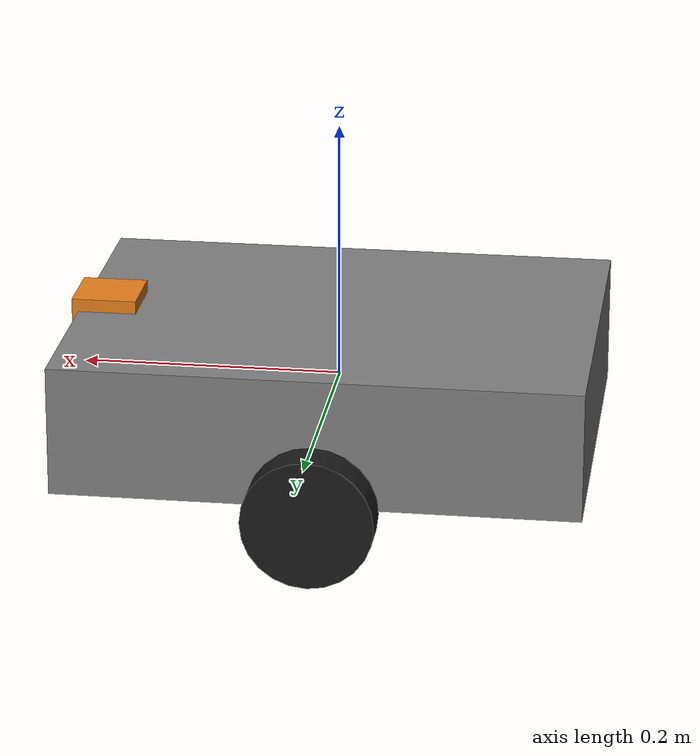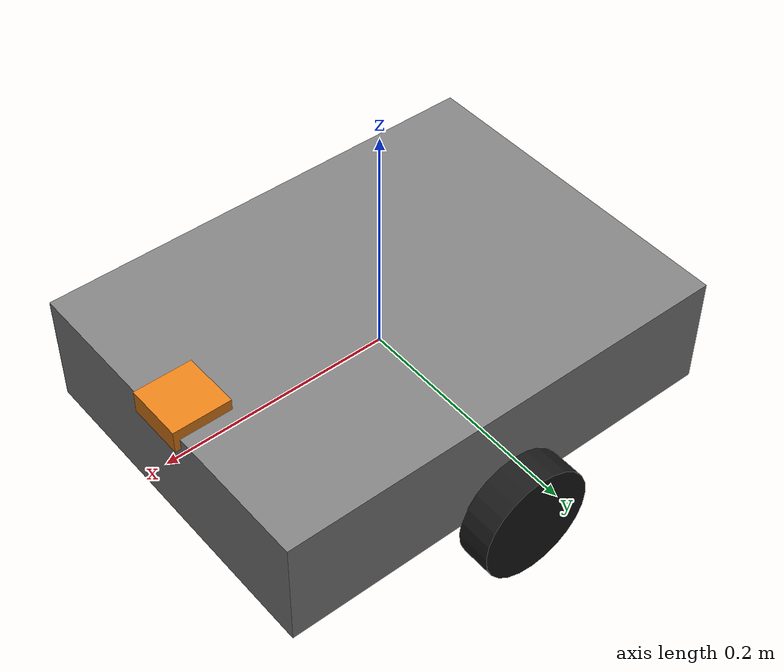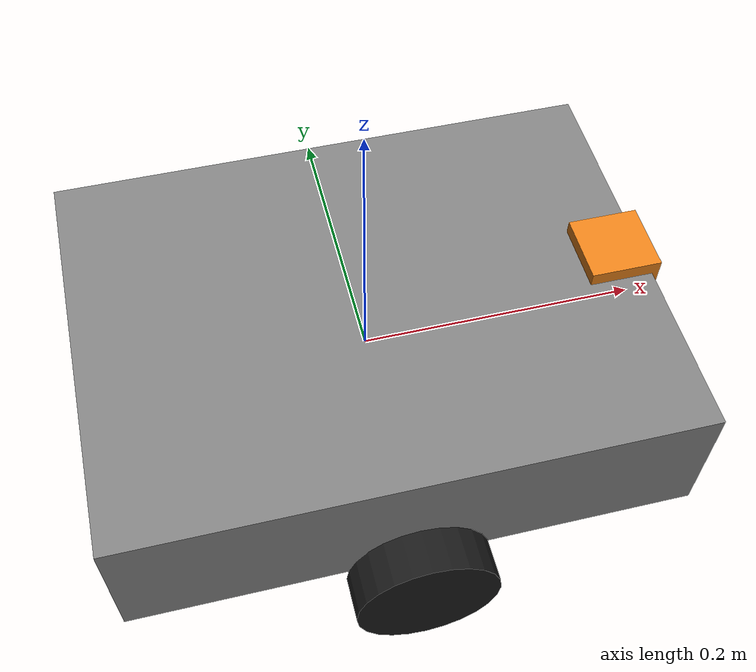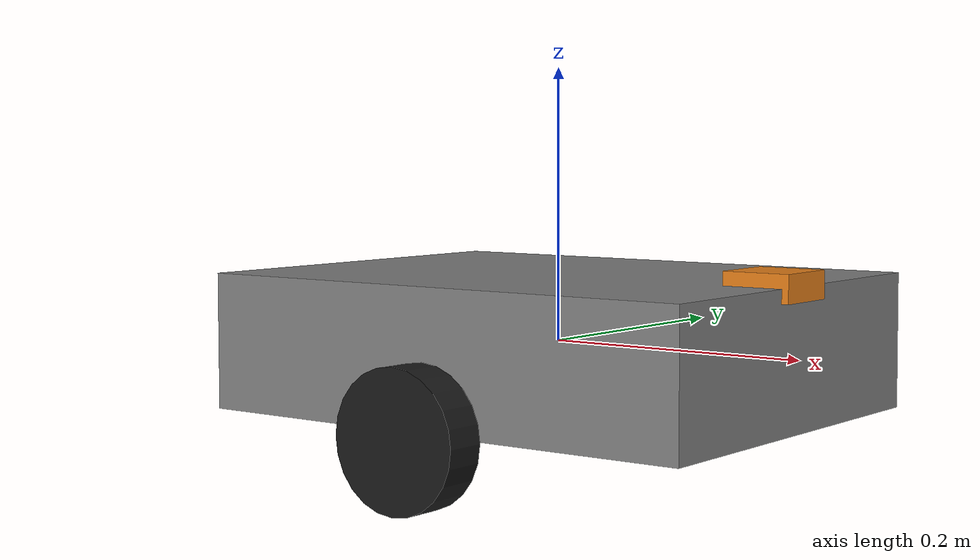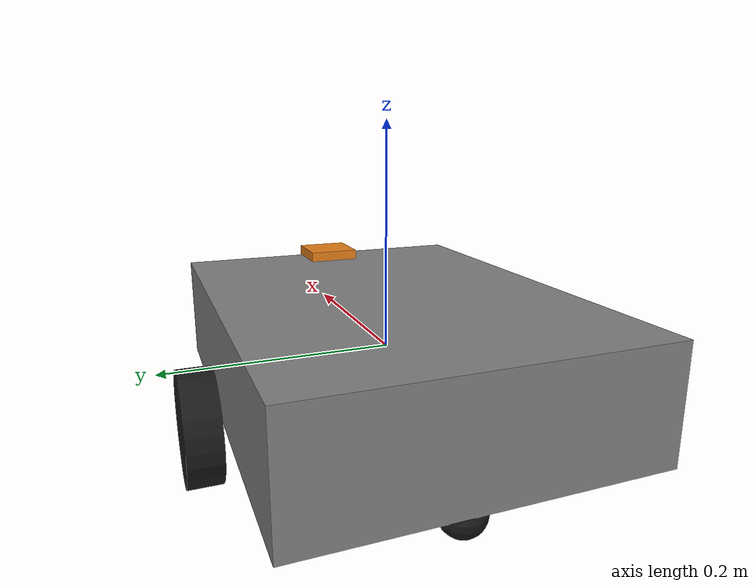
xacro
<?xml version="1.0"?>

<robot name="mobile_robot" xmlns:xacro="http://www.ros.org/wiki/xacro">

    <xacro:include filename="common_macros.xacro" />

    <!-- ============ 属性 ============ -->
    <!-- 底盘 -->
    <xacro:property name="base_length" value="0.4" />
    <xacro:property name="base_width" value="0.3" />
    <xacro:property name="base_height" value="0.1" />
    <xacro:property name="base_mass" value="3.0" />

    <!-- 驱动轮 -->
    <xacro:property name="wheel_radius" value="0.05" />
    <xacro:property name="wheel_width" value="0.03" />
    <xacro:property name="wheel_mass" value="0.3" />
    <xacro:property name="wheel_y" value="0.17" />

    <!-- 万向轮 -->
    <xacro:property name="caster_radius" value="0.02" />
    <xacro:property name="caster_mass" value="0.1" />

    <!-- 材质 -->
    <xacro:declare_material name="grey" rgba="0.5 0.5 0.5 1.0" />
    <xacro:declare_material name="black" rgba="0.1 0.1 0.1 1.0" />
    <xacro:declare_material name="orange" rgba="0.9 0.5 0.1 1.0" />

    <!-- ============ 底盘 ============ -->
    <link name="base_link">
        <visual>
            <geometry>
                <box size="${base_length} ${base_width} ${base_height}" />
            </geometry>
            <origin xyz="0 0 0" rpy="0 0 0" />
            <material name="grey" />
        </visual>
        <!-- 方向标记：橙色小方块在前方，方便区分朝向 -->
        <visual>
            <geometry>
                <box size="0.05 0.05 0.02" />
            </geometry>
            <origin xyz="0.18 0 0.05" rpy="0 0 0" />
            <material name="orange" />
        </visual>
        <collision>
            <geometry>
                <box size="${base_length} ${base_width} ${base_height}" />
            </geometry>
            <origin xyz="0 0 0" rpy="0 0 0" />
        </collision>
        <inertial>
            <origin xyz="0 0 0" rpy="0 0 0" />
            <mass value="${base_mass}" />
            <inertia
                ixx="${base_mass * (base_width*base_width + base_height*base_height) / 12}"
                ixy="0.0" ixz="0.0"
                iyy="${base_mass * (base_length*base_length + base_height*base_height) / 12}"
                iyz="0.0"
                izz="${base_mass * (base_length*base_length + base_width*base_width) / 12}" />
        </inertial>
    </link>

    <!-- ============ 左轮 ============ -->
    <link name="left_wheel_link">
        <visual>
            <geometry>
                <cylinder radius="${wheel_radius}" length="${wheel_width}" />
            </geometry>
            <origin xyz="0 0 0" rpy="${pi/2} 0 0" />
            <material name="black" />
        </visual>
        <collision>
            <geometry>
                <cylinder radius="${wheel_radius}" length="${wheel_width}" />
            </geometry>
            <origin xyz="0 0 0" rpy="${pi/2} 0 0" />
        </collision>
        <inertial>
            <origin xyz="0 0 0" rpy="0 0 0" />
            <mass value="${wheel_mass}" />
            <!-- 圆柱旋转 90° 后，轴向沿 y，所以 Iyy 是轴向惯量 -->
            <inertia
                ixx="${wheel_mass * (3*wheel_radius*wheel_radius + wheel_width*wheel_width) / 12}"
                ixy="0.0" ixz="0.0"
                iyy="${wheel_mass * wheel_radius * wheel_radius / 2}"
                iyz="0.0"
                izz="${wheel_mass * (3*wheel_radius*wheel_radius + wheel_width*wheel_width) / 12}" />
        </inertial>
    </link>

    <joint name="base_to_left_wheel" type="continuous">
        <parent link="base_link" />
        <child link="left_wheel_link" />
        <origin xyz="0 ${wheel_y} ${-base_height/2}" rpy="0 0 0" />
        <axis xyz="0 1 0" />
    </joint>

    <!-- ============ 右轮 ============ -->
    <link name="right_wheel_link">
        <visual>
            <geometry>
                <cylinder radius="${wheel_radius}" length="${wheel_width}" />
            </geometry>
            <origin xyz="0 0 0" rpy="${pi/2} 0 0" />
            <material name="black" />
        </visual>
        <collision>
            <geometry>
                <cylinder radius="${wheel_radius}" length="${wheel_width}" />
            </geometry>
            <origin xyz="0 0 0" rpy="${pi/2} 0 0" />
        </collision>
        <inertial>
            <origin xyz="0 0 0" rpy="0 0 0" />
            <mass value="${wheel_mass}" />
            <inertia
                ixx="${wheel_mass * (3*wheel_radius*wheel_radius + wheel_width*wheel_width) / 12}"
                ixy="0.0" ixz="0.0"
                iyy="${wheel_mass * wheel_radius * wheel_radius / 2}"
                iyz="0.0"
                izz="${wheel_mass * (3*wheel_radius*wheel_radius + wheel_width*wheel_width) / 12}" />
        </inertial>
    </link>

    <joint name="base_to_right_wheel" type="continuous">
        <parent link="base_link" />
        <child link="right_wheel_link" />
        <origin xyz="0 ${-wheel_y} ${-base_height/2}" rpy="0 0 0" />
        <axis xyz="0 1 0" />
    </joint>

    <!-- ============ 万向轮 ============ -->
    <link name="caster_link">
        <visual>
            <geometry>
                <sphere radius="${caster_radius}" />
            </geometry>
            <material name="black" />
        </visual>
        <collision>
            <geometry>
                <sphere radius="${caster_radius}" />
            </geometry>
        </collision>
        <inertial>
            <origin xyz="0 0 0" rpy="0 0 0" />
            <mass value="${caster_mass}" />
            <inertia
                ixx="${2*caster_mass*caster_radius*caster_radius/5}"
                ixy="0.0" ixz="0.0"
                iyy="${2*caster_mass*caster_radius*caster_radius/5}"
                iyz="0.0"
                izz="${2*caster_mass*caster_radius*caster_radius/5}" />
        </inertial>
    </link>

    <joint name="base_to_caster" type="fixed">
        <parent link="base_link" />
        <child link="caster_link" />
        <origin xyz="-0.15 0 ${-base_height/2 - 0.03}" rpy="0 0 0" />
    </joint>

    <!-- ============ Gazebo 差速驱动插件 ============ -->
    <gazebo>
        <plugin filename="gz-sim-diff-drive-system"
            name="gz::sim::systems::DiffDrive">
            <left_joint>base_to_left_wheel</left_joint>
            <right_joint>base_to_right_wheel</right_joint>
            <wheel_separation>0.34</wheel_separation>
            <wheel_radius>0.05</wheel_radius>
            <max_linear_acceleration>1.0</max_linear_acceleration>
            <min_linear_acceleration>-1.0</min_linear_acceleration>
            <max_angular_acceleration>2.0</max_angular_acceleration>
            <min_angular_acceleration>-2.0</min_angular_acceleration>
            <max_linear_velocity>0.5</max_linear_velocity>
            <min_linear_velocity>-0.5</min_linear_velocity>
            <max_angular_velocity>1.0</max_angular_velocity>
            <min_angular_velocity>-1.0</min_angular_velocity>
            <topic>cmd_vel</topic>
            <odom_topic>odom</odom_topic>
            <tf_topic>tf</tf_topic>
            <frame_id>odom</frame_id>
            <child_frame_id>base_link</child_frame_id>
            <odom_publish_frequency>50</odom_publish_frequency>
        </plugin>
    </gazebo>

    <!-- 万向轮摩擦系数改为 0，让它能在平面上滑动 -->
    <gazebo reference="caster_link">
        <mu1>0.0</mu1>
        <mu2>0.0</mu2>
    </gazebo>

    <!-- 轮子摩擦系数调高，保证抓地力 -->
    <gazebo reference="left_wheel_link">
        <mu1>1.0</mu1>
        <mu2>1.0</mu2>
    </gazebo>

    <gazebo reference="right_wheel_link">
        <mu1>1.0</mu1>
        <mu2>1.0</mu2>
    </gazebo>

</robot>

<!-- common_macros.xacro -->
<robot xmlns:xacro="http://www.ros.org/wiki/xacro">

    <!-- ============ 通用材质 ============ -->
    <xacro:macro name="declare_material" params="name rgba">
        <material name="${name}">
            <color rgba="${rgba}" />
        </material>
    </xacro:macro>

    <!-- ============ 长方体 link ============ -->
    <xacro:macro name="box_link" params="name length width height mass color origin:='0 0 0'">
        <link name="${name}">
            <visual>
                <geometry>
                    <box size="${length} ${width} ${height}" />
                </geometry>
                <origin xyz="${origin}" rpy="0 0 0" />
                <material name="${color}" />
            </visual>
            <collision>
                <geometry>
                    <box size="${length} ${width} ${height}" />
                </geometry>
                <origin xyz="${origin}" rpy="0 0 0" />
            </collision>
            <inertial>
                <origin xyz="${origin}" rpy="0 0 0" />
                <mass value="${mass}" />
                <inertia
                    ixx="${mass * (width*width + height*height) / 12}"
                    ixy="0.0" ixz="0.0"
                    iyy="${mass * (length*length + height*height) / 12}"
                    iyz="0.0"
                    izz="${mass * (length*length + width*width) / 12}" />
            </inertial>
        </link>
    </xacro:macro>

    <!-- ============ 圆柱 link ============ -->
    <xacro:macro name="cylinder_link" params="name radius length mass color origin:='0 0 0'">
        <link name="${name}">
            <visual>
                <geometry>
                    <cylinder radius="${radius}" length="${length}" />
                </geometry>
                <origin xyz="${origin}" rpy="0 0 0" />
                <material name="${color}" />
            </visual>
            <collision>
                <geometry>
                    <cylinder radius="${radius}" length="${length}" />
                </geometry>
                <origin xyz="${origin}" rpy="0 0 0" />
            </collision>
            <inertial>
                <origin xyz="${origin}" rpy="0 0 0" />
                <mass value="${mass}" />
                <inertia
                    ixx="${mass * (3*radius*radius + length*length) / 12}"
                    ixy="0.0" ixz="0.0"
                    iyy="${mass * (3*radius*radius + length*length) / 12}"
                    iyz="0.0"
                    izz="${mass * radius * radius / 2}" />
            </inertial>
        </link>
    </xacro:macro>

</robot>
